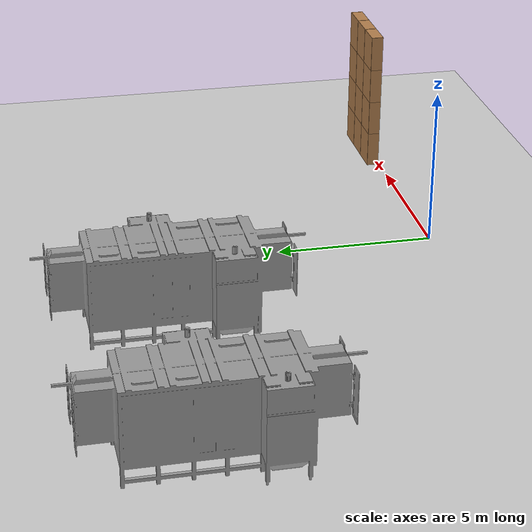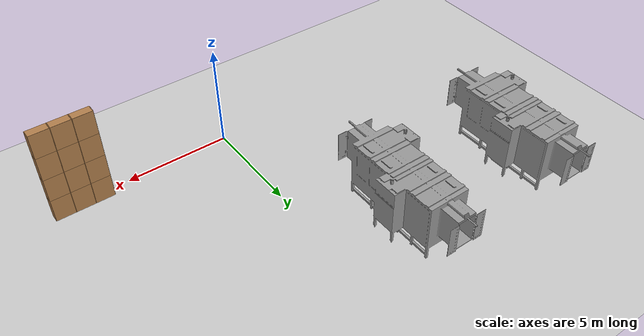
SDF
<sdf version="1.6">
 <world name="default">
  <model name="ground_plane">
   <static>1</static>
   <link name="link">
    <collision name="collision">
     <geometry><plane><normal>0 0 1</normal><size>100 100</size></plane></geometry>
     <surface>
      <contact><collide_bitmask>65535</collide_bitmask></contact>
      <friction><ode><mu>100</mu><mu2>50</mu2></ode></friction>
     </surface>
    </collision>
    <visual name="visual">
     <cast_shadows>0</cast_shadows>
     <geometry><plane><normal>0 0 1</normal><size>100 100</size></plane></geometry>
     <material>
      <script><uri>file://media/materials/scripts/gazebo.material</uri><name>Gazebo/Grey</name></script>
     </material>
    </visual>
   </link>
  </model>
  <model name="machine4_clone_1_clone">
   <link name="link_2">
    <inertial>
     <mass>100</mass>
     <inertia>
      <ixx>0.166667</ixx>
      <ixy>0</ixy>
      <ixz>0</ixz>
      <iyy>0.166667</iyy>
      <iyz>0</iyz>
      <izz>0.166667</izz>
     </inertia>
     <pose>1 1 1 0 -0 0</pose>
    </inertial>
    <visual name="visual">
     <pose>0 0 0 1.57 -0 0</pose>
     <geometry>
      <mesh><uri>/home/piyush/catkin_ws/src/robomuse_simulation/models/Workspace/machine4.dae</uri></mesh>
     </geometry>
     <material>
      <lighting>1</lighting>
      <script><uri>file://media/materials/scripts/gazebo.material</uri><name>Gazebo/Grey</name></script>
      <shader type="pixel"><normal_map>__default__</normal_map></shader>
      <ambient>0.3 0.3 0.3 1</ambient>
      <diffuse>0.7 0.7 0.7 1</diffuse>
      <specular>0.01 0.01 0.01 1</specular>
      <emissive>0 0 0 1</emissive>
     </material>
    </visual>
    <collision name="collision">
     <pose>0 0 0 1.57 -0 0</pose>
     <geometry>
      <mesh>
       <uri>/home/piyush/catkin_ws/src/robomuse_simulation/models/Workspace/machine4.dae</uri>
       <scale>1 1 1</scale>
      </mesh>
     </geometry>
     <surface>
      <friction>
       <ode><mu>1</mu><mu2>1</mu2><fdir1>0 0 0</fdir1><slip1>0</slip1><slip2>0</slip2></ode>
       <torsional>
        <coefficient>1</coefficient>
        <patch_radius>0</patch_radius>
        <surface_radius>0</surface_radius>
        <use_patch_radius>1</use_patch_radius>
        <ode><slip>0</slip></ode>
       </torsional>
      </friction>
      <bounce><restitution_coefficient>0</restitution_coefficient><threshold>1e+06</threshold></bounce>
      <contact>
       <collide_without_contact>0</collide_without_contact>
       <collide_without_contact_bitmask>1</collide_without_contact_bitmask>
       <collide_bitmask>1</collide_bitmask>
       <ode>
        <soft_cfm>0</soft_cfm>
        <soft_erp>0.2</soft_erp>
        <kp>1e+13</kp>
        <kd>1</kd>
        <max_vel>0.01</max_vel>
        <min_depth>0</min_depth>
       </ode>
       <bullet>
        <split_impulse>1</split_impulse>
        <split_impulse_penetration_threshold>-0.01</split_impulse_penetration_threshold>
        <soft_cfm>0</soft_cfm>
        <soft_erp>0.2</soft_erp>
        <kp>1e+13</kp>
        <kd>1</kd>
       </bullet>
      </contact>
     </surface>
    </collision>
   </link>
   <static>1</static>
   <pose>-3.76888 11.5828 1.40985 -0.000698 0.000281 -3.13807</pose>
  </model>
  <model name="machine4_clone_1_clone_0">
   <link name="link_2">
    <inertial>
     <mass>100</mass>
     <inertia>
      <ixx>0.166667</ixx>
      <ixy>0</ixy>
      <ixz>0</ixz>
      <iyy>0.166667</iyy>
      <iyz>0</iyz>
      <izz>0.166667</izz>
     </inertia>
     <pose>1 1 1 0 -0 0</pose>
    </inertial>
    <visual name="visual">
     <pose>0 0 0 1.57 -0 0</pose>
     <geometry>
      <mesh><uri>/home/piyush/catkin_ws/src/robomuse_simulation/models/Workspace/machine4.dae</uri></mesh>
     </geometry>
     <material>
      <lighting>1</lighting>
      <script><uri>file://media/materials/scripts/gazebo.material</uri><name>Gazebo/Grey</name></script>
      <shader type="pixel"><normal_map>__default__</normal_map></shader>
      <ambient>0.3 0.3 0.3 1</ambient>
      <diffuse>0.7 0.7 0.7 1</diffuse>
      <specular>0.01 0.01 0.01 1</specular>
      <emissive>0 0 0 1</emissive>
     </material>
    </visual>
    <collision name="collision">
     <pose>0 0 0 1.57 -0 0</pose>
     <geometry>
      <mesh>
       <uri>/home/piyush/catkin_ws/src/robomuse_simulation/models/Workspace/machine4.dae</uri>
       <scale>1 1 1</scale>
      </mesh>
     </geometry>
     <surface>
      <friction>
       <ode><mu>1</mu><mu2>1</mu2><fdir1>0 0 0</fdir1><slip1>0</slip1><slip2>0</slip2></ode>
       <torsional>
        <coefficient>1</coefficient>
        <patch_radius>0</patch_radius>
        <surface_radius>0</surface_radius>
        <use_patch_radius>1</use_patch_radius>
        <ode><slip>0</slip></ode>
       </torsional>
      </friction>
      <bounce><restitution_coefficient>0</restitution_coefficient><threshold>1e+06</threshold></bounce>
      <contact>
       <collide_without_contact>0</collide_without_contact>
       <collide_without_contact_bitmask>1</collide_without_contact_bitmask>
       <collide_bitmask>1</collide_bitmask>
       <ode>
        <soft_cfm>0</soft_cfm>
        <soft_erp>0.2</soft_erp>
        <kp>1e+13</kp>
        <kd>1</kd>
        <max_vel>0.01</max_vel>
        <min_depth>0</min_depth>
       </ode>
       <bullet>
        <split_impulse>1</split_impulse>
        <split_impulse_penetration_threshold>-0.01</split_impulse_penetration_threshold>
        <soft_cfm>0</soft_cfm>
        <soft_erp>0.2</soft_erp>
        <kp>1e+13</kp>
        <kd>1</kd>
       </bullet>
      </contact>
     </surface>
    </collision>
   </link>
   <static>1</static>
   <pose>-10.4621 11.5828 1.40985 -0.000698 0.000281 -3.13807</pose>
  </model>
  <model name="shelf2.0_clone_0_clone">
   <model name="shelf1.0">
    <model name="bookshelf">
     <static>1</static>
     <link name="link">
      <inertial><mass>1</mass></inertial>
      <collision name="back">
       <pose>0 0.005 0.6 0 -0 0</pose>
       <geometry><box><size>0.9 0.01 1.2</size></box></geometry>
      </collision>
      <visual name="visual1">
       <pose>0 0.005 0.6 0 -0 0</pose>
       <geometry><box><size>0.9 0.01 1.2</size></box></geometry>
       <material>
        <script><uri>file://media/materials/scripts/gazebo.material</uri><name>Gazebo/Wood</name></script>
       </material>
      </visual>
      <collision name="left_side">
       <pose>0.45 -0.195 0.6 0 -0 0</pose>
       <geometry><box><size>0.02 0.4 1.2</size></box></geometry>
      </collision>
      <visual name="visual2">
       <pose>0.45 -0.195 0.6 0 -0 0</pose>
       <geometry><box><size>0.02 0.4 1.2</size></box></geometry>
       <material>
        <script><uri>file://media/materials/scripts/gazebo.material</uri><name>Gazebo/Wood</name></script>
       </material>
      </visual>
      <collision name="right_side">
       <pose>-0.45 -0.195 0.6 0 -0 0</pose>
       <geometry><box><size>0.02 0.4 1.2</size></box></geometry>
      </collision>
      <visual name="visual3">
       <pose>-0.45 -0.195 0.6 0 -0 0</pose>
       <geometry><box><size>0.02 0.4 1.2</size></box></geometry>
       <material>
        <script><uri>file://media/materials/scripts/gazebo.material</uri><name>Gazebo/Wood</name></script>
       </material>
      </visual>
      <collision name="bottom">
       <pose>0 -0.195 0.03 0 -0 0</pose>
       <geometry><box><size>0.88 0.4 0.06</size></box></geometry>
      </collision>
      <visual name="visual4">
       <pose>0 -0.195 0.03 0 -0 0</pose>
       <geometry><box><size>0.88 0.4 0.06</size></box></geometry>
       <material>
        <script><uri>file://media/materials/scripts/gazebo.material</uri><name>Gazebo/Wood</name></script>
       </material>
      </visual>
      <collision name="top">
       <pose>0 -0.195 1.19 0 -0 0</pose>
       <geometry><box><size>0.88 0.4 0.02</size></box></geometry>
      </collision>
      <visual name="visual5">
       <pose>0 -0.195 1.19 0 -0 0</pose>
       <geometry><box><size>0.88 0.4 0.02</size></box></geometry>
       <material>
        <script><uri>file://media/materials/scripts/gazebo.material</uri><name>Gazebo/Wood</name></script>
       </material>
      </visual>
      <collision name="low_shelf">
       <pose>0 -0.195 0.43 0 -0 0</pose>
       <geometry><box><size>0.88 0.4 0.02</size></box></geometry>
      </collision>
      <visual name="visual6">
       <pose>0 -0.195 0.43 0 -0 0</pose>
       <geometry><box><size>0.88 0.4 0.02</size></box></geometry>
       <material>
        <script><uri>file://media/materials/scripts/gazebo.material</uri><name>Gazebo/Wood</name></script>
       </material>
      </visual>
      <collision name="high_shelf">
       <pose>0 -0.195 0.8 0 -0 0</pose>
       <geometry><box><size>0.88 0.4 0.02</size></box></geometry>
      </collision>
      <visual name="visual7">
       <pose>0 -0.195 0.8 0 -0 0</pose>
       <geometry><box><size>0.88 0.4 0.02</size></box></geometry>
       <material>
        <script><uri>file://media/materials/scripts/gazebo.material</uri><name>Gazebo/Wood</name></script>
       </material>
      </visual>
     </link>
     <pose>1e-06 0 -1.8 0 -0 0</pose>
    </model>
    <model name="bookshelf_clone">
     <static>1</static>
     <link name="link">
      <inertial><mass>1</mass></inertial>
      <collision name="back">
       <pose>0 0.005 0.6 0 -0 0</pose>
       <geometry><box><size>0.9 0.01 1.2</size></box></geometry>
      </collision>
      <visual name="visual1">
       <pose>0 0.005 0.6 0 -0 0</pose>
       <geometry><box><size>0.9 0.01 1.2</size></box></geometry>
       <material>
        <script><uri>file://media/materials/scripts/gazebo.material</uri><name>Gazebo/Wood</name></script>
       </material>
      </visual>
      <collision name="left_side">
       <pose>0.45 -0.195 0.6 0 -0 0</pose>
       <geometry><box><size>0.02 0.4 1.2</size></box></geometry>
      </collision>
      <visual name="visual2">
       <pose>0.45 -0.195 0.6 0 -0 0</pose>
       <geometry><box><size>0.02 0.4 1.2</size></box></geometry>
       <material>
        <script><uri>file://media/materials/scripts/gazebo.material</uri><name>Gazebo/Wood</name></script>
       </material>
      </visual>
      <collision name="right_side">
       <pose>-0.45 -0.195 0.6 0 -0 0</pose>
       <geometry><box><size>0.02 0.4 1.2</size></box></geometry>
      </collision>
      <visual name="visual3">
       <pose>-0.45 -0.195 0.6 0 -0 0</pose>
       <geometry><box><size>0.02 0.4 1.2</size></box></geometry>
       <material>
        <script><uri>file://media/materials/scripts/gazebo.material</uri><name>Gazebo/Wood</name></script>
       </material>
      </visual>
      <collision name="bottom">
       <pose>0 -0.195 0.03 0 -0 0</pose>
       <geometry><box><size>0.88 0.4 0.06</size></box></geometry>
      </collision>
      <visual name="visual4">
       <pose>0 -0.195 0.03 0 -0 0</pose>
       <geometry><box><size>0.88 0.4 0.06</size></box></geometry>
       <material>
        <script><uri>file://media/materials/scripts/gazebo.material</uri><name>Gazebo/Wood</name></script>
       </material>
      </visual>
      <collision name="top">
       <pose>0 -0.195 1.19 0 -0 0</pose>
       <geometry><box><size>0.88 0.4 0.02</size></box></geometry>
      </collision>
      <visual name="visual5">
       <pose>0 -0.195 1.19 0 -0 0</pose>
       <geometry><box><size>0.88 0.4 0.02</size></box></geometry>
       <material>
        <script><uri>file://media/materials/scripts/gazebo.material</uri><name>Gazebo/Wood</name></script>
       </material>
      </visual>
      <collision name="low_shelf">
       <pose>0 -0.195 0.43 0 -0 0</pose>
       <geometry><box><size>0.88 0.4 0.02</size></box></geometry>
      </collision>
      <visual name="visual6">
       <pose>0 -0.195 0.43 0 -0 0</pose>
       <geometry><box><size>0.88 0.4 0.02</size></box></geometry>
       <material>
        <script><uri>file://media/materials/scripts/gazebo.material</uri><name>Gazebo/Wood</name></script>
       </material>
      </visual>
      <collision name="high_shelf">
       <pose>0 -0.195 0.8 0 -0 0</pose>
       <geometry><box><size>0.88 0.4 0.02</size></box></geometry>
      </collision>
      <visual name="visual7">
       <pose>0 -0.195 0.8 0 -0 0</pose>
       <geometry><box><size>0.88 0.4 0.02</size></box></geometry>
       <material>
        <script><uri>file://media/materials/scripts/gazebo.material</uri><name>Gazebo/Wood</name></script>
       </material>
      </visual>
     </link>
     <pose>1e-06 0 -0.600002 0 -0 0</pose>
    </model>
    <model name="bookshelf_clone_0">
     <static>1</static>
     <link name="link">
      <inertial><mass>1</mass></inertial>
      <collision name="back">
       <pose>0 0.005 0.6 0 -0 0</pose>
       <geometry><box><size>0.9 0.01 1.2</size></box></geometry>
      </collision>
      <visual name="visual1">
       <pose>0 0.005 0.6 0 -0 0</pose>
       <geometry><box><size>0.9 0.01 1.2</size></box></geometry>
       <material>
        <script><uri>file://media/materials/scripts/gazebo.material</uri><name>Gazebo/Wood</name></script>
       </material>
      </visual>
      <collision name="left_side">
       <pose>0.45 -0.195 0.6 0 -0 0</pose>
       <geometry><box><size>0.02 0.4 1.2</size></box></geometry>
      </collision>
      <visual name="visual2">
       <pose>0.45 -0.195 0.6 0 -0 0</pose>
       <geometry><box><size>0.02 0.4 1.2</size></box></geometry>
       <material>
        <script><uri>file://media/materials/scripts/gazebo.material</uri><name>Gazebo/Wood</name></script>
       </material>
      </visual>
      <collision name="right_side">
       <pose>-0.45 -0.195 0.6 0 -0 0</pose>
       <geometry><box><size>0.02 0.4 1.2</size></box></geometry>
      </collision>
      <visual name="visual3">
       <pose>-0.45 -0.195 0.6 0 -0 0</pose>
       <geometry><box><size>0.02 0.4 1.2</size></box></geometry>
       <material>
        <script><uri>file://media/materials/scripts/gazebo.material</uri><name>Gazebo/Wood</name></script>
       </material>
      </visual>
      <collision name="bottom">
       <pose>0 -0.195 0.03 0 -0 0</pose>
       <geometry><box><size>0.88 0.4 0.06</size></box></geometry>
      </collision>
      <visual name="visual4">
       <pose>0 -0.195 0.03 0 -0 0</pose>
       <geometry><box><size>0.88 0.4 0.06</size></box></geometry>
       <material>
        <script><uri>file://media/materials/scripts/gazebo.material</uri><name>Gazebo/Wood</name></script>
       </material>
      </visual>
      <collision name="top">
       <pose>0 -0.195 1.19 0 -0 0</pose>
       <geometry><box><size>0.88 0.4 0.02</size></box></geometry>
      </collision>
      <visual name="visual5">
       <pose>0 -0.195 1.19 0 -0 0</pose>
       <geometry><box><size>0.88 0.4 0.02</size></box></geometry>
       <material>
        <script><uri>file://media/materials/scripts/gazebo.material</uri><name>Gazebo/Wood</name></script>
       </material>
      </visual>
      <collision name="low_shelf">
       <pose>0 -0.195 0.43 0 -0 0</pose>
       <geometry><box><size>0.88 0.4 0.02</size></box></geometry>
      </collision>
      <visual name="visual6">
       <pose>0 -0.195 0.43 0 -0 0</pose>
       <geometry><box><size>0.88 0.4 0.02</size></box></geometry>
       <material>
        <script><uri>file://media/materials/scripts/gazebo.material</uri><name>Gazebo/Wood</name></script>
       </material>
      </visual>
      <collision name="high_shelf">
       <pose>0 -0.195 0.8 0 -0 0</pose>
       <geometry><box><size>0.88 0.4 0.02</size></box></geometry>
      </collision>
      <visual name="visual7">
       <pose>0 -0.195 0.8 0 -0 0</pose>
       <geometry><box><size>0.88 0.4 0.02</size></box></geometry>
       <material>
        <script><uri>file://media/materials/scripts/gazebo.material</uri><name>Gazebo/Wood</name></script>
       </material>
      </visual>
     </link>
     <pose>1e-06 0 0.599998 0 -0 0</pose>
    </model>
    <model name="bookshelf_clone_0_clone">
     <static>1</static>
     <link name="link">
      <inertial><mass>1</mass></inertial>
      <collision name="back">
       <pose>0 0.005 0.6 0 -0 0</pose>
       <geometry><box><size>0.9 0.01 1.2</size></box></geometry>
      </collision>
      <visual name="visual1">
       <pose>0 0.005 0.6 0 -0 0</pose>
       <geometry><box><size>0.9 0.01 1.2</size></box></geometry>
       <material>
        <script><uri>file://media/materials/scripts/gazebo.material</uri><name>Gazebo/Wood</name></script>
       </material>
      </visual>
      <collision name="left_side">
       <pose>0.45 -0.195 0.6 0 -0 0</pose>
       <geometry><box><size>0.02 0.4 1.2</size></box></geometry>
      </collision>
      <visual name="visual2">
       <pose>0.45 -0.195 0.6 0 -0 0</pose>
       <geometry><box><size>0.02 0.4 1.2</size></box></geometry>
       <material>
        <script><uri>file://media/materials/scripts/gazebo.material</uri><name>Gazebo/Wood</name></script>
       </material>
      </visual>
      <collision name="right_side">
       <pose>-0.45 -0.195 0.6 0 -0 0</pose>
       <geometry><box><size>0.02 0.4 1.2</size></box></geometry>
      </collision>
      <visual name="visual3">
       <pose>-0.45 -0.195 0.6 0 -0 0</pose>
       <geometry><box><size>0.02 0.4 1.2</size></box></geometry>
       <material>
        <script><uri>file://media/materials/scripts/gazebo.material</uri><name>Gazebo/Wood</name></script>
       </material>
      </visual>
      <collision name="bottom">
       <pose>0 -0.195 0.03 0 -0 0</pose>
       <geometry><box><size>0.88 0.4 0.06</size></box></geometry>
      </collision>
      <visual name="visual4">
       <pose>0 -0.195 0.03 0 -0 0</pose>
       <geometry><box><size>0.88 0.4 0.06</size></box></geometry>
       <material>
        <script><uri>file://media/materials/scripts/gazebo.material</uri><name>Gazebo/Wood</name></script>
       </material>
      </visual>
      <collision name="top">
       <pose>0 -0.195 1.19 0 -0 0</pose>
       <geometry><box><size>0.88 0.4 0.02</size></box></geometry>
      </collision>
      <visual name="visual5">
       <pose>0 -0.195 1.19 0 -0 0</pose>
       <geometry><box><size>0.88 0.4 0.02</size></box></geometry>
       <material>
        <script><uri>file://media/materials/scripts/gazebo.material</uri><name>Gazebo/Wood</name></script>
       </material>
      </visual>
      <collision name="low_shelf">
       <pose>0 -0.195 0.43 0 -0 0</pose>
       <geometry><box><size>0.88 0.4 0.02</size></box></geometry>
      </collision>
      <visual name="visual6">
       <pose>0 -0.195 0.43 0 -0 0</pose>
       <geometry><box><size>0.88 0.4 0.02</size></box></geometry>
       <material>
        <script><uri>file://media/materials/scripts/gazebo.material</uri><name>Gazebo/Wood</name></script>
       </material>
      </visual>
      <collision name="high_shelf">
       <pose>0 -0.195 0.8 0 -0 0</pose>
       <geometry><box><size>0.88 0.4 0.02</size></box></geometry>
      </collision>
      <visual name="visual7">
       <pose>0 -0.195 0.8 0 -0 0</pose>
       <geometry><box><size>0.88 0.4 0.02</size></box></geometry>
       <material>
        <script><uri>file://media/materials/scripts/gazebo.material</uri><name>Gazebo/Wood</name></script>
       </material>
      </visual>
     </link>
     <pose>1e-06 0 1.8 0 -0 0</pose>
    </model>
    <joint name="link_JOINT_3" type="fixed">
     <parent>bookshelf::link</parent>
     <child>bookshelf_clone::link</child>
     <physics>
      <ode><limit><cfm>0</cfm><erp>0.2</erp></limit><suspension><cfm>0</cfm><erp>0.2</erp></suspension></ode>
     </physics>
    </joint>
    <joint name="link_JOINT_4" type="fixed">
     <parent>bookshelf::link</parent>
     <child>bookshelf_clone_0::link</child>
     <physics>
      <ode><limit><cfm>0</cfm><erp>0.2</erp></limit><suspension><cfm>0</cfm><erp>0.2</erp></suspension></ode>
     </physics>
    </joint>
    <joint name="link_JOINT_5" type="fixed">
     <parent>bookshelf::link</parent>
     <child>bookshelf_clone_0_clone::link</child>
     <physics>
      <ode><limit><cfm>0</cfm><erp>0.2</erp></limit><suspension><cfm>0</cfm><erp>0.2</erp></suspension></ode>
     </physics>
    </joint>
    <static>0</static>
    <pose>-0.920027 0 0 0 -0 0</pose>
   </model>
   <model name="shelf1.0_clone">
    <model name="bookshelf">
     <static>1</static>
     <link name="link">
      <inertial><mass>1</mass></inertial>
      <collision name="back">
       <pose>0 0.005 0.6 0 -0 0</pose>
       <geometry><box><size>0.9 0.01 1.2</size></box></geometry>
      </collision>
      <visual name="visual1">
       <pose>0 0.005 0.6 0 -0 0</pose>
       <geometry><box><size>0.9 0.01 1.2</size></box></geometry>
       <material>
        <script><uri>file://media/materials/scripts/gazebo.material</uri><name>Gazebo/Wood</name></script>
       </material>
      </visual>
      <collision name="left_side">
       <pose>0.45 -0.195 0.6 0 -0 0</pose>
       <geometry><box><size>0.02 0.4 1.2</size></box></geometry>
      </collision>
      <visual name="visual2">
       <pose>0.45 -0.195 0.6 0 -0 0</pose>
       <geometry><box><size>0.02 0.4 1.2</size></box></geometry>
       <material>
        <script><uri>file://media/materials/scripts/gazebo.material</uri><name>Gazebo/Wood</name></script>
       </material>
      </visual>
      <collision name="right_side">
       <pose>-0.45 -0.195 0.6 0 -0 0</pose>
       <geometry><box><size>0.02 0.4 1.2</size></box></geometry>
      </collision>
      <visual name="visual3">
       <pose>-0.45 -0.195 0.6 0 -0 0</pose>
       <geometry><box><size>0.02 0.4 1.2</size></box></geometry>
       <material>
        <script><uri>file://media/materials/scripts/gazebo.material</uri><name>Gazebo/Wood</name></script>
       </material>
      </visual>
      <collision name="bottom">
       <pose>0 -0.195 0.03 0 -0 0</pose>
       <geometry><box><size>0.88 0.4 0.06</size></box></geometry>
      </collision>
      <visual name="visual4">
       <pose>0 -0.195 0.03 0 -0 0</pose>
       <geometry><box><size>0.88 0.4 0.06</size></box></geometry>
       <material>
        <script><uri>file://media/materials/scripts/gazebo.material</uri><name>Gazebo/Wood</name></script>
       </material>
      </visual>
      <collision name="top">
       <pose>0 -0.195 1.19 0 -0 0</pose>
       <geometry><box><size>0.88 0.4 0.02</size></box></geometry>
      </collision>
      <visual name="visual5">
       <pose>0 -0.195 1.19 0 -0 0</pose>
       <geometry><box><size>0.88 0.4 0.02</size></box></geometry>
       <material>
        <script><uri>file://media/materials/scripts/gazebo.material</uri><name>Gazebo/Wood</name></script>
       </material>
      </visual>
      <collision name="low_shelf">
       <pose>0 -0.195 0.43 0 -0 0</pose>
       <geometry><box><size>0.88 0.4 0.02</size></box></geometry>
      </collision>
      <visual name="visual6">
       <pose>0 -0.195 0.43 0 -0 0</pose>
       <geometry><box><size>0.88 0.4 0.02</size></box></geometry>
       <material>
        <script><uri>file://media/materials/scripts/gazebo.material</uri><name>Gazebo/Wood</name></script>
       </material>
      </visual>
      <collision name="high_shelf">
       <pose>0 -0.195 0.8 0 -0 0</pose>
       <geometry><box><size>0.88 0.4 0.02</size></box></geometry>
      </collision>
      <visual name="visual7">
       <pose>0 -0.195 0.8 0 -0 0</pose>
       <geometry><box><size>0.88 0.4 0.02</size></box></geometry>
       <material>
        <script><uri>file://media/materials/scripts/gazebo.material</uri><name>Gazebo/Wood</name></script>
       </material>
      </visual>
     </link>
     <pose>1e-06 0 -1.8 0 -0 0</pose>
    </model>
    <model name="bookshelf_clone">
     <static>1</static>
     <link name="link">
      <inertial><mass>1</mass></inertial>
      <collision name="back">
       <pose>0 0.005 0.6 0 -0 0</pose>
       <geometry><box><size>0.9 0.01 1.2</size></box></geometry>
      </collision>
      <visual name="visual1">
       <pose>0 0.005 0.6 0 -0 0</pose>
       <geometry><box><size>0.9 0.01 1.2</size></box></geometry>
       <material>
        <script><uri>file://media/materials/scripts/gazebo.material</uri><name>Gazebo/Wood</name></script>
       </material>
      </visual>
      <collision name="left_side">
       <pose>0.45 -0.195 0.6 0 -0 0</pose>
       <geometry><box><size>0.02 0.4 1.2</size></box></geometry>
      </collision>
      <visual name="visual2">
       <pose>0.45 -0.195 0.6 0 -0 0</pose>
       <geometry><box><size>0.02 0.4 1.2</size></box></geometry>
       <material>
        <script><uri>file://media/materials/scripts/gazebo.material</uri><name>Gazebo/Wood</name></script>
       </material>
      </visual>
      <collision name="right_side">
       <pose>-0.45 -0.195 0.6 0 -0 0</pose>
       <geometry><box><size>0.02 0.4 1.2</size></box></geometry>
      </collision>
      <visual name="visual3">
       <pose>-0.45 -0.195 0.6 0 -0 0</pose>
       <geometry><box><size>0.02 0.4 1.2</size></box></geometry>
       <material>
        <script><uri>file://media/materials/scripts/gazebo.material</uri><name>Gazebo/Wood</name></script>
       </material>
      </visual>
      <collision name="bottom">
       <pose>0 -0.195 0.03 0 -0 0</pose>
       <geometry><box><size>0.88 0.4 0.06</size></box></geometry>
      </collision>
      <visual name="visual4">
       <pose>0 -0.195 0.03 0 -0 0</pose>
       <geometry><box><size>0.88 0.4 0.06</size></box></geometry>
       <material>
        <script><uri>file://media/materials/scripts/gazebo.material</uri><name>Gazebo/Wood</name></script>
       </material>
      </visual>
      <collision name="top">
       <pose>0 -0.195 1.19 0 -0 0</pose>
       <geometry><box><size>0.88 0.4 0.02</size></box></geometry>
      </collision>
      <visual name="visual5">
       <pose>0 -0.195 1.19 0 -0 0</pose>
       <geometry><box><size>0.88 0.4 0.02</size></box></geometry>
       <material>
        <script><uri>file://media/materials/scripts/gazebo.material</uri><name>Gazebo/Wood</name></script>
       </material>
      </visual>
      <collision name="low_shelf">
       <pose>0 -0.195 0.43 0 -0 0</pose>
       <geometry><box><size>0.88 0.4 0.02</size></box></geometry>
      </collision>
      <visual name="visual6">
       <pose>0 -0.195 0.43 0 -0 0</pose>
       <geometry><box><size>0.88 0.4 0.02</size></box></geometry>
       <material>
        <script><uri>file://media/materials/scripts/gazebo.material</uri><name>Gazebo/Wood</name></script>
       </material>
      </visual>
      <collision name="high_shelf">
       <pose>0 -0.195 0.8 0 -0 0</pose>
       <geometry><box><size>0.88 0.4 0.02</size></box></geometry>
      </collision>
      <visual name="visual7">
       <pose>0 -0.195 0.8 0 -0 0</pose>
       <geometry><box><size>0.88 0.4 0.02</size></box></geometry>
       <material>
        <script><uri>file://media/materials/scripts/gazebo.material</uri><name>Gazebo/Wood</name></script>
       </material>
      </visual>
     </link>
     <pose>1e-06 0 -0.600002 0 -0 0</pose>
    </model>
    <model name="bookshelf_clone_0">
     <static>1</static>
     <link name="link">
      <inertial><mass>1</mass></inertial>
      <collision name="back">
       <pose>0 0.005 0.6 0 -0 0</pose>
       <geometry><box><size>0.9 0.01 1.2</size></box></geometry>
      </collision>
      <visual name="visual1">
       <pose>0 0.005 0.6 0 -0 0</pose>
       <geometry><box><size>0.9 0.01 1.2</size></box></geometry>
       <material>
        <script><uri>file://media/materials/scripts/gazebo.material</uri><name>Gazebo/Wood</name></script>
       </material>
      </visual>
      <collision name="left_side">
       <pose>0.45 -0.195 0.6 0 -0 0</pose>
       <geometry><box><size>0.02 0.4 1.2</size></box></geometry>
      </collision>
      <visual name="visual2">
       <pose>0.45 -0.195 0.6 0 -0 0</pose>
       <geometry><box><size>0.02 0.4 1.2</size></box></geometry>
       <material>
        <script><uri>file://media/materials/scripts/gazebo.material</uri><name>Gazebo/Wood</name></script>
       </material>
      </visual>
      <collision name="right_side">
       <pose>-0.45 -0.195 0.6 0 -0 0</pose>
       <geometry><box><size>0.02 0.4 1.2</size></box></geometry>
      </collision>
      <visual name="visual3">
       <pose>-0.45 -0.195 0.6 0 -0 0</pose>
       <geometry><box><size>0.02 0.4 1.2</size></box></geometry>
       <material>
        <script><uri>file://media/materials/scripts/gazebo.material</uri><name>Gazebo/Wood</name></script>
       </material>
      </visual>
      <collision name="bottom">
       <pose>0 -0.195 0.03 0 -0 0</pose>
       <geometry><box><size>0.88 0.4 0.06</size></box></geometry>
      </collision>
      <visual name="visual4">
       <pose>0 -0.195 0.03 0 -0 0</pose>
       <geometry><box><size>0.88 0.4 0.06</size></box></geometry>
       <material>
        <script><uri>file://media/materials/scripts/gazebo.material</uri><name>Gazebo/Wood</name></script>
       </material>
      </visual>
      <collision name="top">
       <pose>0 -0.195 1.19 0 -0 0</pose>
       <geometry><box><size>0.88 0.4 0.02</size></box></geometry>
      </collision>
      <visual name="visual5">
       <pose>0 -0.195 1.19 0 -0 0</pose>
       <geometry><box><size>0.88 0.4 0.02</size></box></geometry>
       <material>
        <script><uri>file://media/materials/scripts/gazebo.material</uri><name>Gazebo/Wood</name></script>
       </material>
      </visual>
      <collision name="low_shelf">
       <pose>0 -0.195 0.43 0 -0 0</pose>
       <geometry><box><size>0.88 0.4 0.02</size></box></geometry>
      </collision>
      <visual name="visual6">
       <pose>0 -0.195 0.43 0 -0 0</pose>
       <geometry><box><size>0.88 0.4 0.02</size></box></geometry>
       <material>
        <script><uri>file://media/materials/scripts/gazebo.material</uri><name>Gazebo/Wood</name></script>
       </material>
      </visual>
      <collision name="high_shelf">
       <pose>0 -0.195 0.8 0 -0 0</pose>
       <geometry><box><size>0.88 0.4 0.02</size></box></geometry>
      </collision>
      <visual name="visual7">
       <pose>0 -0.195 0.8 0 -0 0</pose>
       <geometry><box><size>0.88 0.4 0.02</size></box></geometry>
       <material>
        <script><uri>file://media/materials/scripts/gazebo.material</uri><name>Gazebo/Wood</name></script>
       </material>
      </visual>
     </link>
     <pose>1e-06 0 0.599998 0 -0 0</pose>
    </model>
    <model name="bookshelf_clone_0_clone">
     <static>1</static>
     <link name="link">
      <inertial><mass>1</mass></inertial>
      <collision name="back">
       <pose>0 0.005 0.6 0 -0 0</pose>
       <geometry><box><size>0.9 0.01 1.2</size></box></geometry>
      </collision>
      <visual name="visual1">
       <pose>0 0.005 0.6 0 -0 0</pose>
       <geometry><box><size>0.9 0.01 1.2</size></box></geometry>
       <material>
        <script><uri>file://media/materials/scripts/gazebo.material</uri><name>Gazebo/Wood</name></script>
       </material>
      </visual>
      <collision name="left_side">
       <pose>0.45 -0.195 0.6 0 -0 0</pose>
       <geometry><box><size>0.02 0.4 1.2</size></box></geometry>
      </collision>
      <visual name="visual2">
       <pose>0.45 -0.195 0.6 0 -0 0</pose>
       <geometry><box><size>0.02 0.4 1.2</size></box></geometry>
       <material>
        <script><uri>file://media/materials/scripts/gazebo.material</uri><name>Gazebo/Wood</name></script>
       </material>
      </visual>
      <collision name="right_side">
       <pose>-0.45 -0.195 0.6 0 -0 0</pose>
       <geometry><box><size>0.02 0.4 1.2</size></box></geometry>
      </collision>
      <visual name="visual3">
       <pose>-0.45 -0.195 0.6 0 -0 0</pose>
       <geometry><box><size>0.02 0.4 1.2</size></box></geometry>
       <material>
        <script><uri>file://media/materials/scripts/gazebo.material</uri><name>Gazebo/Wood</name></script>
       </material>
      </visual>
      <collision name="bottom">
       <pose>0 -0.195 0.03 0 -0 0</pose>
       <geometry><box><size>0.88 0.4 0.06</size></box></geometry>
      </collision>
      <visual name="visual4">
       <pose>0 -0.195 0.03 0 -0 0</pose>
       <geometry><box><size>0.88 0.4 0.06</size></box></geometry>
       <material>
        <script><uri>file://media/materials/scripts/gazebo.material</uri><name>Gazebo/Wood</name></script>
       </material>
      </visual>
      <collision name="top">
       <pose>0 -0.195 1.19 0 -0 0</pose>
       <geometry><box><size>0.88 0.4 0.02</size></box></geometry>
      </collision>
      <visual name="visual5">
       <pose>0 -0.195 1.19 0 -0 0</pose>
       <geometry><box><size>0.88 0.4 0.02</size></box></geometry>
       <material>
        <script><uri>file://media/materials/scripts/gazebo.material</uri><name>Gazebo/Wood</name></script>
       </material>
      </visual>
      <collision name="low_shelf">
       <pose>0 -0.195 0.43 0 -0 0</pose>
       <geometry><box><size>0.88 0.4 0.02</size></box></geometry>
      </collision>
      <visual name="visual6">
       <pose>0 -0.195 0.43 0 -0 0</pose>
       <geometry><box><size>0.88 0.4 0.02</size></box></geometry>
       <material>
        <script><uri>file://media/materials/scripts/gazebo.material</uri><name>Gazebo/Wood</name></script>
       </material>
      </visual>
      <collision name="high_shelf">
       <pose>0 -0.195 0.8 0 -0 0</pose>
       <geometry><box><size>0.88 0.4 0.02</size></box></geometry>
      </collision>
      <visual name="visual7">
       <pose>0 -0.195 0.8 0 -0 0</pose>
       <geometry><box><size>0.88 0.4 0.02</size></box></geometry>
       <material>
        <script><uri>file://media/materials/scripts/gazebo.material</uri><name>Gazebo/Wood</name></script>
       </material>
      </visual>
     </link>
     <pose>1e-06 0 1.8 0 -0 0</pose>
    </model>
    <joint name="link_JOINT_3" type="fixed">
     <parent>bookshelf::link</parent>
     <child>bookshelf_clone::link</child>
     <physics>
      <ode><limit><cfm>0</cfm><erp>0.2</erp></limit><suspension><cfm>0</cfm><erp>0.2</erp></suspension></ode>
     </physics>
    </joint>
    <joint name="link_JOINT_4" type="fixed">
     <parent>bookshelf::link</parent>
     <child>bookshelf_clone_0::link</child>
     <physics>
      <ode><limit><cfm>0</cfm><erp>0.2</erp></limit><suspension><cfm>0</cfm><erp>0.2</erp></suspension></ode>
     </physics>
    </joint>
    <joint name="link_JOINT_5" type="fixed">
     <parent>bookshelf::link</parent>
     <child>bookshelf_clone_0_clone::link</child>
     <physics>
      <ode><limit><cfm>0</cfm><erp>0.2</erp></limit><suspension><cfm>0</cfm><erp>0.2</erp></suspension></ode>
     </physics>
    </joint>
    <static>0</static>
    <pose>-2.5e-05 0 0 0 -0 0</pose>
   </model>
   <model name="shelf1.0_clone_0">
    <model name="bookshelf">
     <static>1</static>
     <link name="link">
      <inertial><mass>1</mass></inertial>
      <collision name="back">
       <pose>0 0.005 0.6 0 -0 0</pose>
       <geometry><box><size>0.9 0.01 1.2</size></box></geometry>
      </collision>
      <visual name="visual1">
       <pose>0 0.005 0.6 0 -0 0</pose>
       <geometry><box><size>0.9 0.01 1.2</size></box></geometry>
       <material>
        <script><uri>file://media/materials/scripts/gazebo.material</uri><name>Gazebo/Wood</name></script>
       </material>
      </visual>
      <collision name="left_side">
       <pose>0.45 -0.195 0.6 0 -0 0</pose>
       <geometry><box><size>0.02 0.4 1.2</size></box></geometry>
      </collision>
      <visual name="visual2">
       <pose>0.45 -0.195 0.6 0 -0 0</pose>
       <geometry><box><size>0.02 0.4 1.2</size></box></geometry>
       <material>
        <script><uri>file://media/materials/scripts/gazebo.material</uri><name>Gazebo/Wood</name></script>
       </material>
      </visual>
      <collision name="right_side">
       <pose>-0.45 -0.195 0.6 0 -0 0</pose>
       <geometry><box><size>0.02 0.4 1.2</size></box></geometry>
      </collision>
      <visual name="visual3">
       <pose>-0.45 -0.195 0.6 0 -0 0</pose>
       <geometry><box><size>0.02 0.4 1.2</size></box></geometry>
       <material>
        <script><uri>file://media/materials/scripts/gazebo.material</uri><name>Gazebo/Wood</name></script>
       </material>
      </visual>
      <collision name="bottom">
       <pose>0 -0.195 0.03 0 -0 0</pose>
       <geometry><box><size>0.88 0.4 0.06</size></box></geometry>
      </collision>
      <visual name="visual4">
       <pose>0 -0.195 0.03 0 -0 0</pose>
       <geometry><box><size>0.88 0.4 0.06</size></box></geometry>
       <material>
        <script><uri>file://media/materials/scripts/gazebo.material</uri><name>Gazebo/Wood</name></script>
       </material>
      </visual>
      <collision name="top">
       <pose>0 -0.195 1.19 0 -0 0</pose>
       <geometry><box><size>0.88 0.4 0.02</size></box></geometry>
      </collision>
      <visual name="visual5">
       <pose>0 -0.195 1.19 0 -0 0</pose>
       <geometry><box><size>0.88 0.4 0.02</size></box></geometry>
       <material>
        <script><uri>file://media/materials/scripts/gazebo.material</uri><name>Gazebo/Wood</name></script>
       </material>
      </visual>
      <collision name="low_shelf">
       <pose>0 -0.195 0.43 0 -0 0</pose>
       <geometry><box><size>0.88 0.4 0.02</size></box></geometry>
      </collision>
      <visual name="visual6">
       <pose>0 -0.195 0.43 0 -0 0</pose>
       <geometry><box><size>0.88 0.4 0.02</size></box></geometry>
       <material>
        <script><uri>file://media/materials/scripts/gazebo.material</uri><name>Gazebo/Wood</name></script>
       </material>
      </visual>
      <collision name="high_shelf">
       <pose>0 -0.195 0.8 0 -0 0</pose>
       <geometry><box><size>0.88 0.4 0.02</size></box></geometry>
      </collision>
      <visual name="visual7">
       <pose>0 -0.195 0.8 0 -0 0</pose>
       <geometry><box><size>0.88 0.4 0.02</size></box></geometry>
       <material>
        <script><uri>file://media/materials/scripts/gazebo.material</uri><name>Gazebo/Wood</name></script>
       </material>
      </visual>
     </link>
     <pose>1e-06 0 -1.8 0 -0 0</pose>
    </model>
    <model name="bookshelf_clone">
     <static>1</static>
     <link name="link">
      <inertial><mass>1</mass></inertial>
      <collision name="back">
       <pose>0 0.005 0.6 0 -0 0</pose>
       <geometry><box><size>0.9 0.01 1.2</size></box></geometry>
      </collision>
      <visual name="visual1">
       <pose>0 0.005 0.6 0 -0 0</pose>
       <geometry><box><size>0.9 0.01 1.2</size></box></geometry>
       <material>
        <script><uri>file://media/materials/scripts/gazebo.material</uri><name>Gazebo/Wood</name></script>
       </material>
      </visual>
      <collision name="left_side">
       <pose>0.45 -0.195 0.6 0 -0 0</pose>
       <geometry><box><size>0.02 0.4 1.2</size></box></geometry>
      </collision>
      <visual name="visual2">
       <pose>0.45 -0.195 0.6 0 -0 0</pose>
       <geometry><box><size>0.02 0.4 1.2</size></box></geometry>
       <material>
        <script><uri>file://media/materials/scripts/gazebo.material</uri><name>Gazebo/Wood</name></script>
       </material>
      </visual>
      <collision name="right_side">
       <pose>-0.45 -0.195 0.6 0 -0 0</pose>
       <geometry><box><size>0.02 0.4 1.2</size></box></geometry>
      </collision>
      <visual name="visual3">
       <pose>-0.45 -0.195 0.6 0 -0 0</pose>
       <geometry><box><size>0.02 0.4 1.2</size></box></geometry>
       <material>
        <script><uri>file://media/materials/scripts/gazebo.material</uri><name>Gazebo/Wood</name></script>
       </material>
      </visual>
      <collision name="bottom">
       <pose>0 -0.195 0.03 0 -0 0</pose>
       <geometry><box><size>0.88 0.4 0.06</size></box></geometry>
      </collision>
      <visual name="visual4">
       <pose>0 -0.195 0.03 0 -0 0</pose>
       <geometry><box><size>0.88 0.4 0.06</size></box></geometry>
       <material>
        <script><uri>file://media/materials/scripts/gazebo.material</uri><name>Gazebo/Wood</name></script>
       </material>
      </visual>
      <collision name="top">
       <pose>0 -0.195 1.19 0 -0 0</pose>
       <geometry><box><size>0.88 0.4 0.02</size></box></geometry>
      </collision>
      <visual name="visual5">
       <pose>0 -0.195 1.19 0 -0 0</pose>
       <geometry><box><size>0.88 0.4 0.02</size></box></geometry>
       <material>
        <script><uri>file://media/materials/scripts/gazebo.material</uri><name>Gazebo/Wood</name></script>
       </material>
      </visual>
      <collision name="low_shelf">
       <pose>0 -0.195 0.43 0 -0 0</pose>
       <geometry><box><size>0.88 0.4 0.02</size></box></geometry>
      </collision>
      <visual name="visual6">
       <pose>0 -0.195 0.43 0 -0 0</pose>
       <geometry><box><size>0.88 0.4 0.02</size></box></geometry>
       <material>
        <script><uri>file://media/materials/scripts/gazebo.material</uri><name>Gazebo/Wood</name></script>
       </material>
      </visual>
      <collision name="high_shelf">
       <pose>0 -0.195 0.8 0 -0 0</pose>
       <geometry><box><size>0.88 0.4 0.02</size></box></geometry>
      </collision>
      <visual name="visual7">
       <pose>0 -0.195 0.8 0 -0 0</pose>
       <geometry><box><size>0.88 0.4 0.02</size></box></geometry>
       <material>
        <script><uri>file://media/materials/scripts/gazebo.material</uri><name>Gazebo/Wood</name></script>
       </material>
      </visual>
     </link>
     <pose>1e-06 0 -0.600002 0 -0 0</pose>
    </model>
    <model name="bookshelf_clone_0">
     <static>1</static>
     <link name="link">
      <inertial><mass>1</mass></inertial>
      <collision name="back">
       <pose>0 0.005 0.6 0 -0 0</pose>
       <geometry><box><size>0.9 0.01 1.2</size></box></geometry>
      </collision>
      <visual name="visual1">
       <pose>0 0.005 0.6 0 -0 0</pose>
       <geometry><box><size>0.9 0.01 1.2</size></box></geometry>
       <material>
        <script><uri>file://media/materials/scripts/gazebo.material</uri><name>Gazebo/Wood</name></script>
       </material>
      </visual>
      <collision name="left_side">
       <pose>0.45 -0.195 0.6 0 -0 0</pose>
       <geometry><box><size>0.02 0.4 1.2</size></box></geometry>
      </collision>
      <visual name="visual2">
       <pose>0.45 -0.195 0.6 0 -0 0</pose>
       <geometry><box><size>0.02 0.4 1.2</size></box></geometry>
       <material>
        <script><uri>file://media/materials/scripts/gazebo.material</uri><name>Gazebo/Wood</name></script>
       </material>
      </visual>
      <collision name="right_side">
       <pose>-0.45 -0.195 0.6 0 -0 0</pose>
       <geometry><box><size>0.02 0.4 1.2</size></box></geometry>
      </collision>
      <visual name="visual3">
       <pose>-0.45 -0.195 0.6 0 -0 0</pose>
       <geometry><box><size>0.02 0.4 1.2</size></box></geometry>
       <material>
        <script><uri>file://media/materials/scripts/gazebo.material</uri><name>Gazebo/Wood</name></script>
       </material>
      </visual>
      <collision name="bottom">
       <pose>0 -0.195 0.03 0 -0 0</pose>
       <geometry><box><size>0.88 0.4 0.06</size></box></geometry>
      </collision>
      <visual name="visual4">
       <pose>0 -0.195 0.03 0 -0 0</pose>
       <geometry><box><size>0.88 0.4 0.06</size></box></geometry>
       <material>
        <script><uri>file://media/materials/scripts/gazebo.material</uri><name>Gazebo/Wood</name></script>
       </material>
      </visual>
      <collision name="top">
       <pose>0 -0.195 1.19 0 -0 0</pose>
       <geometry><box><size>0.88 0.4 0.02</size></box></geometry>
      </collision>
      <visual name="visual5">
       <pose>0 -0.195 1.19 0 -0 0</pose>
       <geometry><box><size>0.88 0.4 0.02</size></box></geometry>
       <material>
        <script><uri>file://media/materials/scripts/gazebo.material</uri><name>Gazebo/Wood</name></script>
       </material>
      </visual>
      <collision name="low_shelf">
       <pose>0 -0.195 0.43 0 -0 0</pose>
       <geometry><box><size>0.88 0.4 0.02</size></box></geometry>
      </collision>
      <visual name="visual6">
       <pose>0 -0.195 0.43 0 -0 0</pose>
       <geometry><box><size>0.88 0.4 0.02</size></box></geometry>
       <material>
        <script><uri>file://media/materials/scripts/gazebo.material</uri><name>Gazebo/Wood</name></script>
       </material>
      </visual>
      <collision name="high_shelf">
       <pose>0 -0.195 0.8 0 -0 0</pose>
       <geometry><box><size>0.88 0.4 0.02</size></box></geometry>
      </collision>
      <visual name="visual7">
       <pose>0 -0.195 0.8 0 -0 0</pose>
       <geometry><box><size>0.88 0.4 0.02</size></box></geometry>
       <material>
        <script><uri>file://media/materials/scripts/gazebo.material</uri><name>Gazebo/Wood</name></script>
       </material>
      </visual>
     </link>
     <pose>1e-06 0 0.599998 0 -0 0</pose>
    </model>
    <model name="bookshelf_clone_0_clone">
     <static>1</static>
     <link name="link">
      <inertial><mass>1</mass></inertial>
      <collision name="back">
       <pose>0 0.005 0.6 0 -0 0</pose>
       <geometry><box><size>0.9 0.01 1.2</size></box></geometry>
      </collision>
      <visual name="visual1">
       <pose>0 0.005 0.6 0 -0 0</pose>
       <geometry><box><size>0.9 0.01 1.2</size></box></geometry>
       <material>
        <script><uri>file://media/materials/scripts/gazebo.material</uri><name>Gazebo/Wood</name></script>
       </material>
      </visual>
      <collision name="left_side">
       <pose>0.45 -0.195 0.6 0 -0 0</pose>
       <geometry><box><size>0.02 0.4 1.2</size></box></geometry>
      </collision>
      <visual name="visual2">
       <pose>0.45 -0.195 0.6 0 -0 0</pose>
       <geometry><box><size>0.02 0.4 1.2</size></box></geometry>
       <material>
        <script><uri>file://media/materials/scripts/gazebo.material</uri><name>Gazebo/Wood</name></script>
       </material>
      </visual>
      <collision name="right_side">
       <pose>-0.45 -0.195 0.6 0 -0 0</pose>
       <geometry><box><size>0.02 0.4 1.2</size></box></geometry>
      </collision>
      <visual name="visual3">
       <pose>-0.45 -0.195 0.6 0 -0 0</pose>
       <geometry><box><size>0.02 0.4 1.2</size></box></geometry>
       <material>
        <script><uri>file://media/materials/scripts/gazebo.material</uri><name>Gazebo/Wood</name></script>
       </material>
      </visual>
      <collision name="bottom">
       <pose>0 -0.195 0.03 0 -0 0</pose>
       <geometry><box><size>0.88 0.4 0.06</size></box></geometry>
      </collision>
      <visual name="visual4">
       <pose>0 -0.195 0.03 0 -0 0</pose>
       <geometry><box><size>0.88 0.4 0.06</size></box></geometry>
       <material>
        <script><uri>file://media/materials/scripts/gazebo.material</uri><name>Gazebo/Wood</name></script>
       </material>
      </visual>
      <collision name="top">
       <pose>0 -0.195 1.19 0 -0 0</pose>
       <geometry><box><size>0.88 0.4 0.02</size></box></geometry>
      </collision>
      <visual name="visual5">
       <pose>0 -0.195 1.19 0 -0 0</pose>
       <geometry><box><size>0.88 0.4 0.02</size></box></geometry>
       <material>
        <script><uri>file://media/materials/scripts/gazebo.material</uri><name>Gazebo/Wood</name></script>
       </material>
      </visual>
      <collision name="low_shelf">
       <pose>0 -0.195 0.43 0 -0 0</pose>
       <geometry><box><size>0.88 0.4 0.02</size></box></geometry>
      </collision>
      <visual name="visual6">
       <pose>0 -0.195 0.43 0 -0 0</pose>
       <geometry><box><size>0.88 0.4 0.02</size></box></geometry>
       <material>
        <script><uri>file://media/materials/scripts/gazebo.material</uri><name>Gazebo/Wood</name></script>
       </material>
      </visual>
      <collision name="high_shelf">
       <pose>0 -0.195 0.8 0 -0 0</pose>
       <geometry><box><size>0.88 0.4 0.02</size></box></geometry>
      </collision>
      <visual name="visual7">
       <pose>0 -0.195 0.8 0 -0 0</pose>
       <geometry><box><size>0.88 0.4 0.02</size></box></geometry>
       <material>
        <script><uri>file://media/materials/scripts/gazebo.material</uri><name>Gazebo/Wood</name></script>
       </material>
      </visual>
     </link>
     <pose>1e-06 0 1.8 0 -0 0</pose>
    </model>
    <joint name="link_JOINT_3" type="fixed">
     <parent>bookshelf::link</parent>
     <child>bookshelf_clone::link</child>
     <physics>
      <ode><limit><cfm>0</cfm><erp>0.2</erp></limit><suspension><cfm>0</cfm><erp>0.2</erp></suspension></ode>
     </physics>
    </joint>
    <joint name="link_JOINT_4" type="fixed">
     <parent>bookshelf::link</parent>
     <child>bookshelf_clone_0::link</child>
     <physics>
      <ode><limit><cfm>0</cfm><erp>0.2</erp></limit><suspension><cfm>0</cfm><erp>0.2</erp></suspension></ode>
     </physics>
    </joint>
    <joint name="link_JOINT_5" type="fixed">
     <parent>bookshelf::link</parent>
     <child>bookshelf_clone_0_clone::link</child>
     <physics>
      <ode><limit><cfm>0</cfm><erp>0.2</erp></limit><suspension><cfm>0</cfm><erp>0.2</erp></suspension></ode>
     </physics>
    </joint>
    <static>0</static>
    <pose>0.919977 0 0 0 -0 0</pose>
   </model>
   <joint name="link_JOINT_0" type="fixed">
    <parent>shelf1.0::bookshelf::link</parent>
    <child>shelf1.0_clone::bookshelf::link</child>
    <physics>
     <ode><limit><cfm>0</cfm><erp>0.2</erp></limit><suspension><cfm>0</cfm><erp>0.2</erp></suspension></ode>
    </physics>
   </joint>
   <joint name="link_JOINT_1" type="fixed">
    <parent>shelf1.0::bookshelf::link</parent>
    <child>shelf1.0_clone_0::bookshelf::link</child>
    <physics>
     <ode><limit><cfm>0</cfm><erp>0.2</erp></limit><suspension><cfm>0</cfm><erp>0.2</erp></suspension></ode>
    </physics>
   </joint>
   <static>0</static>
   <pose>7.26008 0.445638 1.80812 0 -0 0</pose>
  </model>
 </world>
</sdf>
